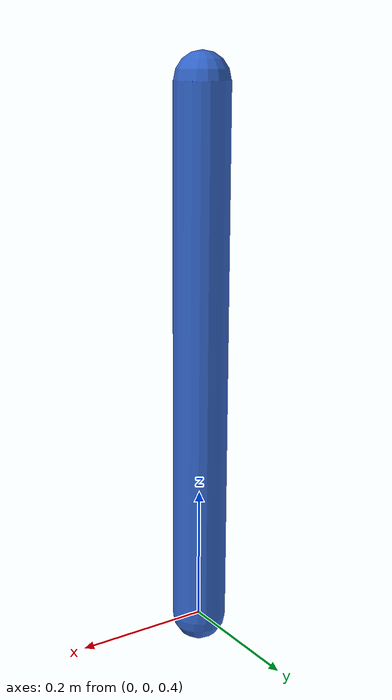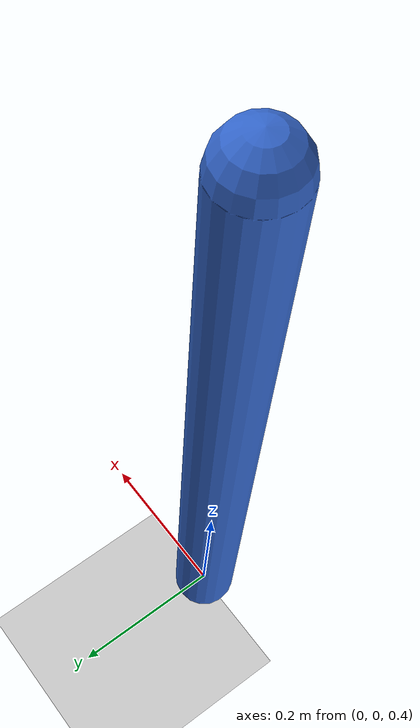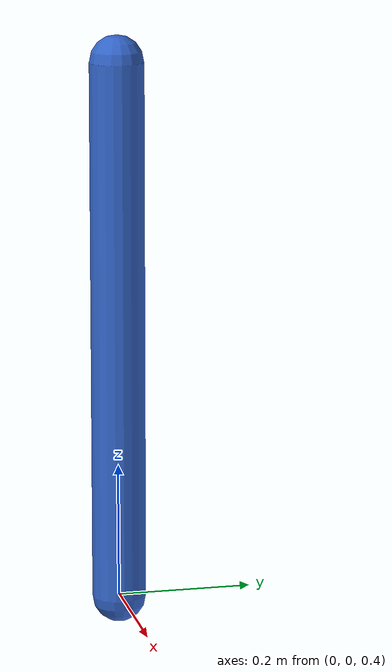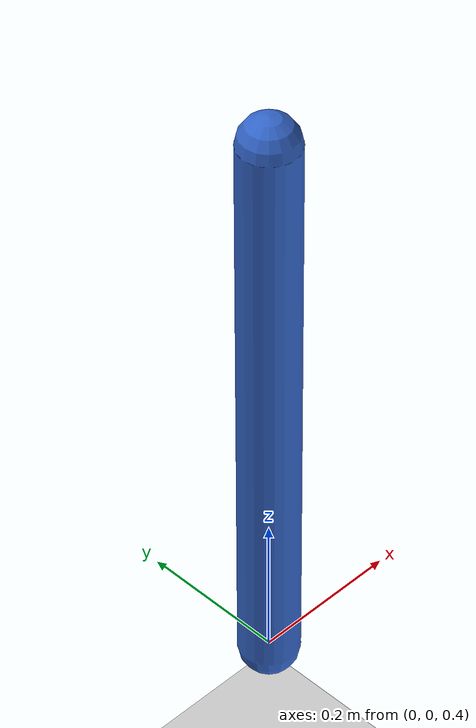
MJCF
<mujoco model="day1_pendulum">

    <compiler angle="degree"/>

    <option
        timestep="0.002"
        gravity="0 0 -9.81"
    />

    <worldbody>

        <light
            name="top_light"
            pos="0 0 3"
            dir="0 0 -1"
        />

        <geom
            name="floor"
            type="plane"
            size="2 2 0.1"
            rgba="0.8 0.8 0.8 1"
        />

        <body
            name="pendulum"
            pos="0 0 1.2"
        >

            <joint
                name="hinge"
                type="hinge"
                pos="0 0 0"
                axis="0 1 0"
                damping="0.05"
            />

            <geom
                name="rod"
                type="capsule"
                fromto="0 0 0  0 0 -0.8"
                size="0.04"
                mass="1"
                rgba="0.2 0.4 0.8 1"
            />

        </body>

    </worldbody>

</mujoco>
